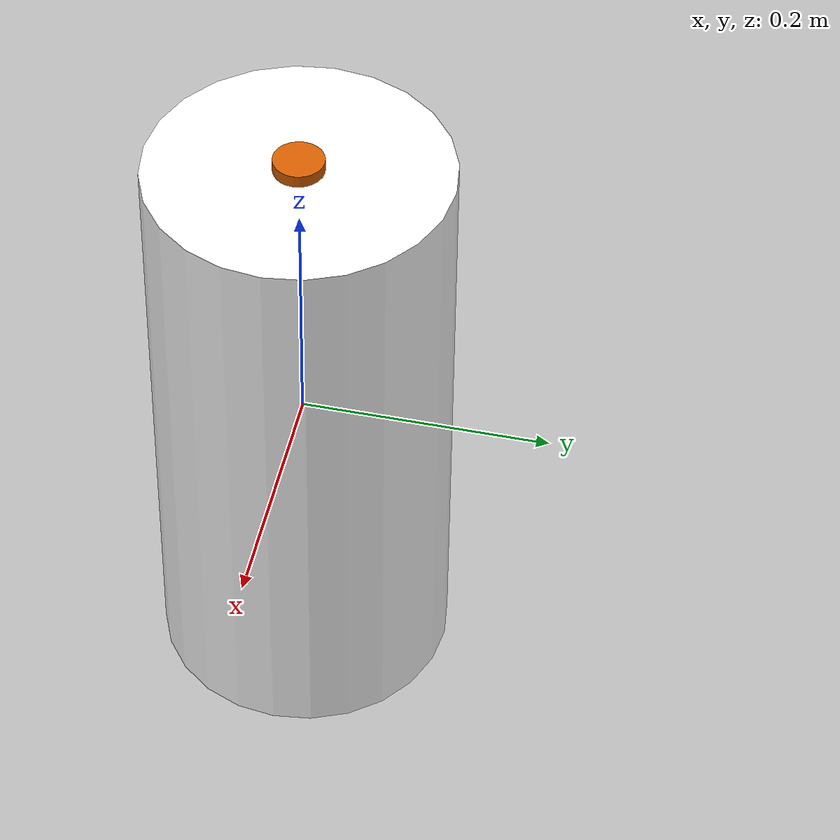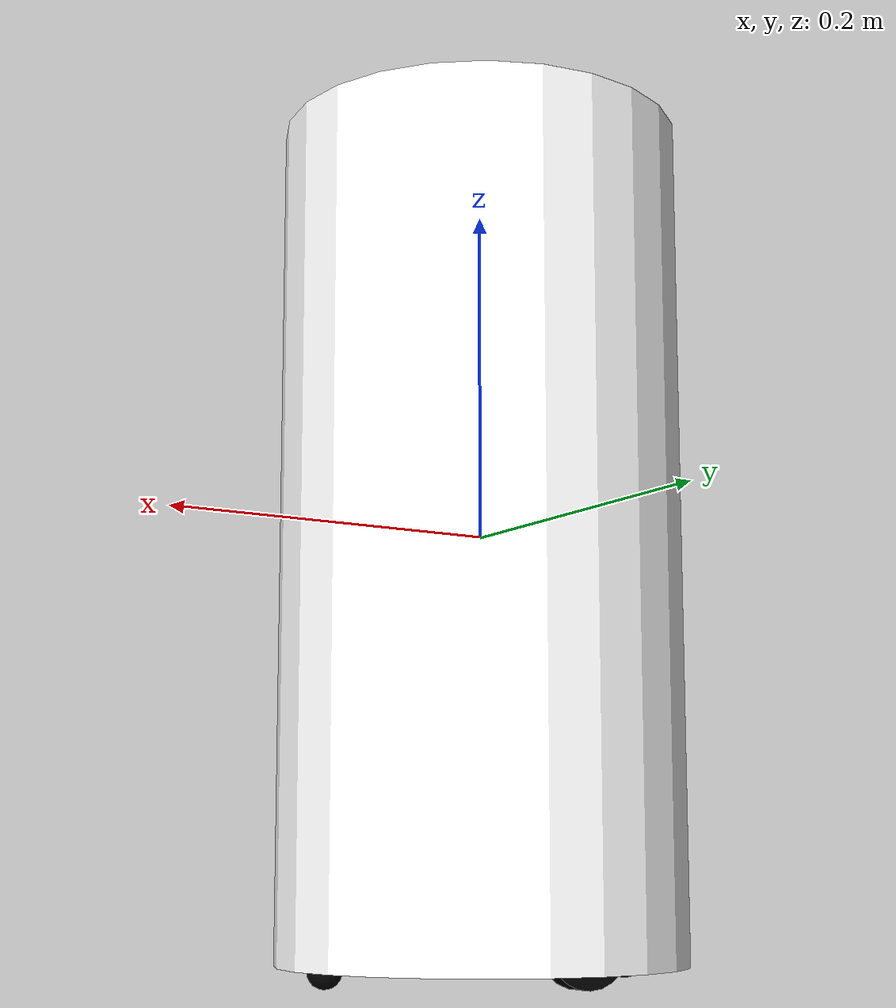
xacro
<?xml version="1.0"?>
<robot name="goldorak" xmlns:xacro="http://ros.org/wiki/xacro">

  <xacro:property name="body_radius" value="0.12" />
  <xacro:property name="body_height" value="0.5" />
  <xacro:property name="wheelbase" value="0.194" />
  <xacro:property name="wheel_radius" value="0.029" />
  <xacro:property name="wheel_thickness" value="0.01" />
  <xacro:property name="wheel_offset" value="-0.20" />
  <xacro:property name="casterbase" value="0.194" />
  <xacro:property name="caster_radius" value="0.01" />
  <xacro:property name="caster_offset" value="-0.24" />
  <xacro:property name="pi" value="3.1415" />

  <material name="blue">
    <color rgba="0 0 .8 1"/>
  </material>

  <material name="black">
    <color rgba="0 0 0 1"/>
  </material>

  <material name="white">
    <color rgba="1 1 1 1"/>
  </material>

  <xacro:macro name="default_inertial" params="mass">
    <inertial>
      <mass value="${mass}" />
      <inertia ixx="1.0" ixy="0.0" ixz="0.0"
               iyy="1.0" iyz="0.0"
               izz="1.0" />
    </inertial>
  </xacro:macro>

  <link name="base_link">
    <visual>
      <geometry>
        <cylinder radius="${body_radius}" length="${body_height}"/>
      </geometry>
      <material name="white"/>
    </visual>
    <collision>
      <geometry>
        <cylinder radius="${body_radius}" length="${body_height}"/>
      </geometry>
    </collision>
    <inertial>
      <mass value="2" />
      <origin xyz="0 0 0.0" />
      <inertia ixx="0.01" ixy="0.0" ixz="0.0"
               iyy="0.01" iyz="0.0"
               izz="0.5" />
    </inertial>
  </link>

  <xacro:macro name="wheel" params="prefix reflect">

    <link name="${prefix}_wheel">
      <visual>
        <origin xyz="0 0 0" rpy="${pi/2} 0 0" />
        <geometry>
          <cylinder radius="${wheel_radius}" length="${wheel_thickness}"/>
        </geometry>
        <material name="black"/>
        <origin xyz="0 0 0" rpy="0 0 0" />
      </visual>
      <collision>
        <origin xyz="0 0 0" rpy="${pi/2} 0 0" />
        <geometry>
          <cylinder radius="${wheel_radius}" length="${wheel_thickness}"/>
        </geometry>
        <origin xyz="0 0 0" rpy="0 0 0" />
      </collision>
      <inertial>
          <origin xyz="0 0 0"/>
          <mass value="0.01" />
          <inertia ixx="0.001" ixy="0.0" ixz="0.0"
                   iyy="0.001" iyz="0.0"
                   izz="0.001" />
        </inertial>
    </link>
    <joint name="${prefix}_wheel_joint" type="continuous">
      <axis xyz="0 1 0" rpy="0 0 0" />
      <parent link="base_link"/>
      <child link="${prefix}_wheel"/>
      <origin xyz="0
                   ${(wheelbase + wheel_thickness) * reflect / 2}
                   ${wheel_offset - wheel_radius}"
              rpy="0 0 0"/>
    </joint>

    <!-- This block provides the simulator (Gazebo) with information on a few additional
    physical properties. See http://gazebosim.org/tutorials/?tut=ros_urdf for more-->
    <gazebo reference="${prefix}_wheel">
      <mu1>1.0</mu1>
      <mu2>1.0</mu2>
      <kp>1000000.0</kp>
      <kd>100.0</kd>
      <material>Gazebo/Grey</material>
    </gazebo>

    <!-- This block connects the wheel joint to an actuator (motor), which informs both
    simulation and visualization of the robot -->
    <transmission name="${prefix}_wheel_trans" type="SimpleTransmission">
      <type>transmission_interface/SimpleTransmission</type>
      <actuator name="${prefix}_wheel_motor">
        <mechanicalReduction>1</mechanicalReduction>
      </actuator>
      <joint name="${prefix}_wheel_joint">
        <hardwareInterface>VelocityJointInterface</hardwareInterface>
      </joint>
    </transmission>

  </xacro:macro>

  <xacro:wheel prefix="right" reflect="1"/>
  <xacro:wheel prefix="left" reflect="-1"/>

  <xacro:macro name="caster" params="prefix reflect">

    <link name="${prefix}_caster">
      <visual>
        <origin xyz="0 0 0" rpy="${pi/2} 0 0" />
        <geometry>
          <sphere radius="${caster_radius}" />
        </geometry>
        <material name="black"/>
        <origin xyz="0 0 0" rpy="0 0 0" />
      </visual>
      <collision>
        <origin xyz="0 0 0" rpy="${pi/2} 0 0" />
        <geometry>
          <sphere radius="${caster_radius}" />
        </geometry>
        <origin xyz="0 0 0" rpy="0 0 0" />
      </collision>
      <inertial>
        <origin xyz="0 0 0" />
        <mass value="0.01" />
        <inertia ixx="0.001" ixy="0.0" ixz="0.0"
                 iyy="0.001" iyz="0.0"
                 izz="0.001" />
        </inertial>
    </link>
    <joint name="${prefix}_caster_joint" type="fixed">
      <axis xyz="0 1 0" rpy="0 0 0" />
      <parent link="base_link"/>
      <child link="${prefix}_caster"/>
      <origin xyz="${(casterbase + caster_radius) * reflect / 2}
                   0
                   ${caster_offset - caster_radius}"
              rpy="0 0 0"/>
    </joint>

    <gazebo reference="${prefix}_caster">
      <mu1>0.0</mu1>
      <mu2>0.0</mu2>
      <kp>1000000.0</kp>
      <kd>100.0</kd>
      <minDepth>0.001</minDepth>
      <maxVel>1.0</maxVel>
      <material>Gazebo/Grey</material>
    </gazebo>

  </xacro:macro>

  <xacro:caster prefix="front" reflect="1"/>
  <xacro:caster prefix="rear" reflect="-1"/>

  <!-- Laser scanner 1D -->
  <joint name="laser_joint" type="fixed">
    <axis xyz="0 1 0" />
    <origin xyz="0 0 ${body_height / 2}" rpy="0 0 0"/>
    <parent link="base_link"/>
    <child link="laser_link"/>
  </joint>

  <link name="laser_link">
    <collision>
      <origin xyz="0 0 0" rpy="0 0 0"/>
      <geometry>
        <cylinder radius="0.02" length="0.02"/>
      </geometry>
    </collision>

    <visual>
      <origin xyz="0 0 0" rpy="0 0 0"/>
      <geometry>
        <cylinder radius="0.02" length="0.02"/>
      </geometry>
    </visual>

    <inertial>
      <mass value="1e-5" />
      <origin xyz="0 0 0" rpy="0 0 0"/>
      <inertia ixx="1e-6" ixy="0" ixz="0"
               iyy="1e-6" iyz="0"
               izz="1e-6" />
    </inertial>
  </link>

  <!-- Gazebo plugin for ROS Control -->
  <gazebo>
    <plugin name="gazebo_ros_control" filename="libgazebo_ros_control.so">
      <robotNamespace>/</robotNamespace>
    </plugin>
  </gazebo>

  <!-- Gazebo plugin for Laser scanner -->
  <gazebo reference="laser_link">
    <sensor type="ray" name="laser_sensor">
      <pose>0 0 0 0 0 0</pose>
      <visualize>true</visualize>
      <update_rate>40</update_rate>
      <ray>
        <scan>
          <horizontal>
            <samples>1</samples>
            <resolution>1</resolution>
            <min_angle>-1.570796</min_angle>
            <max_angle>1.570796</max_angle>
          </horizontal>
        </scan>
        <range>
          <min>0.10</min>
          <max>30.0</max>
          <resolution>0.01</resolution>
        </range>
        <noise>
          <type>gaussian</type>
          <mean>0.0</mean>
          <stddev>0.01</stddev>
        </noise>
      </ray>
      <plugin name="gazebo_ros_laser_controller" filename="libgazebo_ros_laser.so">
        <topicName>/laser/scan</topicName>
        <frameName>laser_link</frameName>
      </plugin>
    </sensor>
  </gazebo>
</robot>
